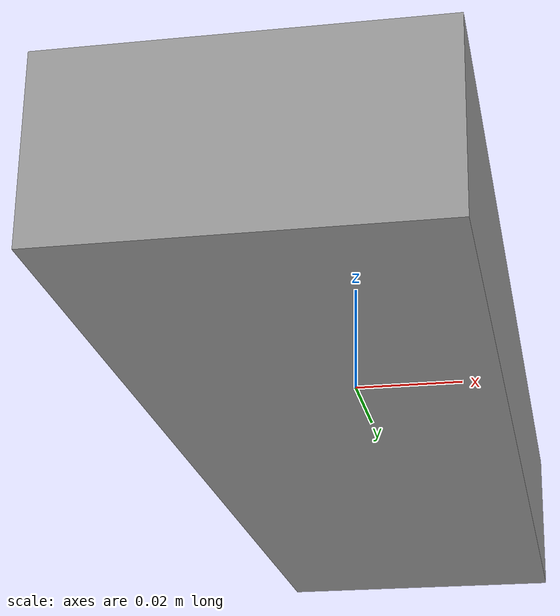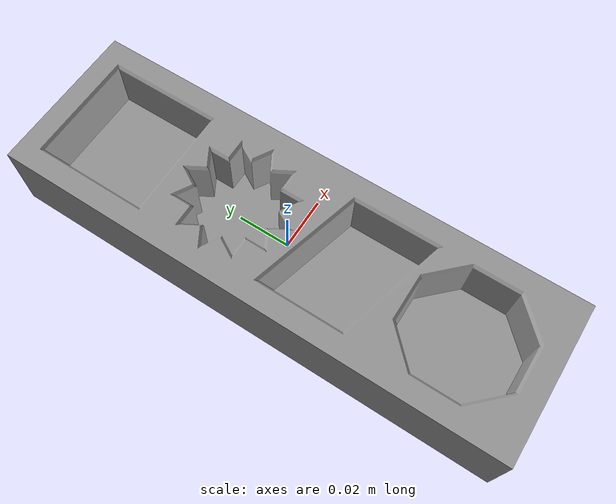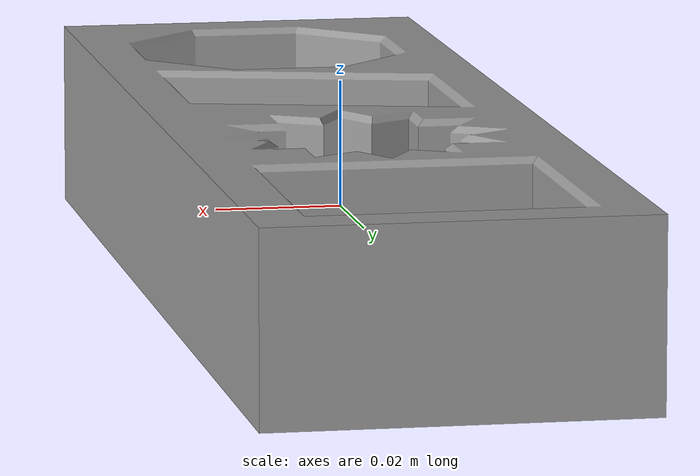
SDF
<?xml version="1.0"?>
<sdf version="1.4">
  <model name="grayBox">
    <static>false</static>
    <link name="link">
      <pose>0 0 0 0 0 0</pose>
      <inertial>
        <pose>0 -0.659496 -2.328312 0 0 0</pose>
        <mass>1.0</mass>
        <inertia>
          <ixx>799327552</ixx>
          <ixy>1064541</ixy>
          <ixz>-2.520177</ixz>
          <iyy>109614152</iyy>
          <iyz>-1169978.5</iyz>
          <izz>871955712</izz>
        </inertia>
      </inertial>

      <visual name="visual">
        <geometry>
          <mesh>
            <uri>model://grayBox/meshes/grayBox.stl</uri>
            <scale>0.001 0.001 0.001</scale>
          </mesh>
        </geometry>
        <material>
          <script>
            <uri>file://media/materials/scripts/gazebo.material</uri>
            <name>Gazebo/Gray</name>
          </script>
        </material>
      </visual>

      <collision name="collision">
        <geometry>
          <mesh>
            <uri>model://grayBox/meshes/grayBox.stl</uri>
            <scale>0.001 0.001 0.001</scale>
          </mesh>
        </geometry>
      </collision>
    </link>
  </model>
</sdf>
